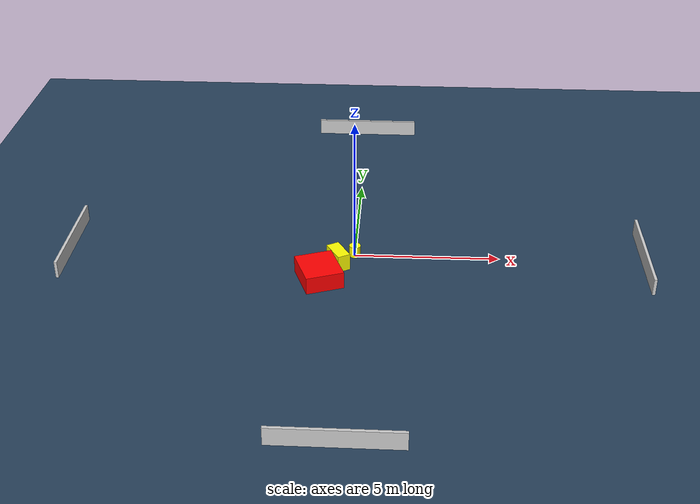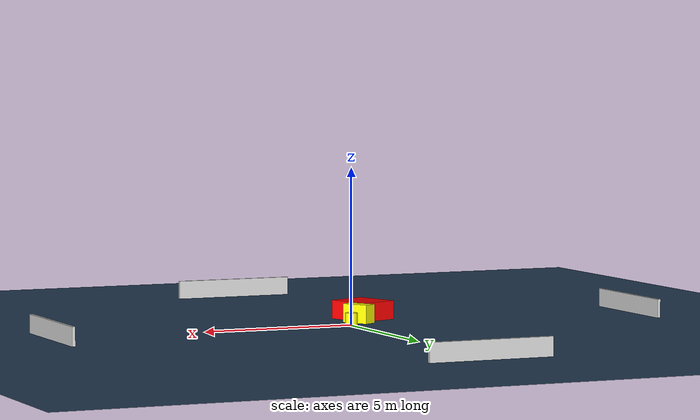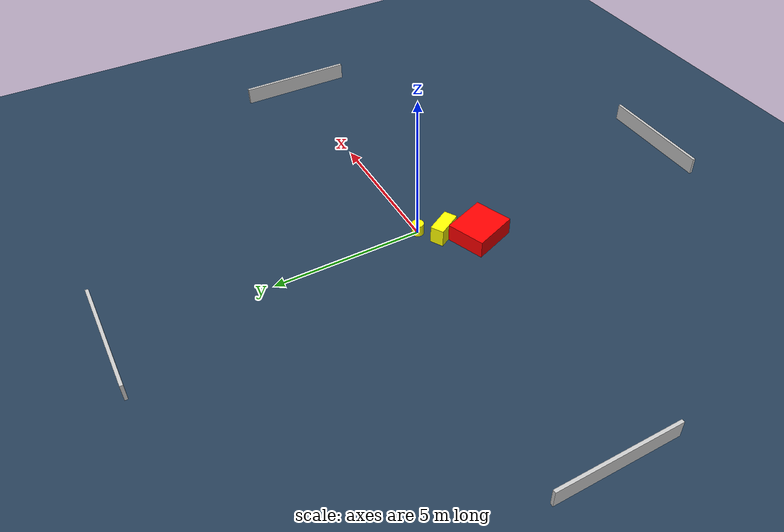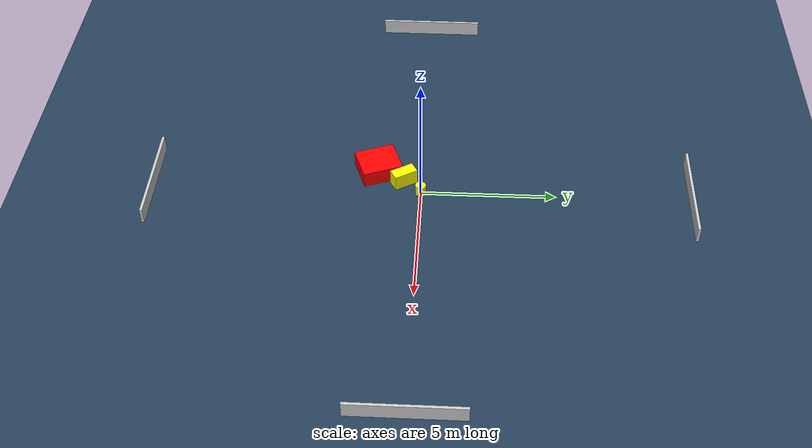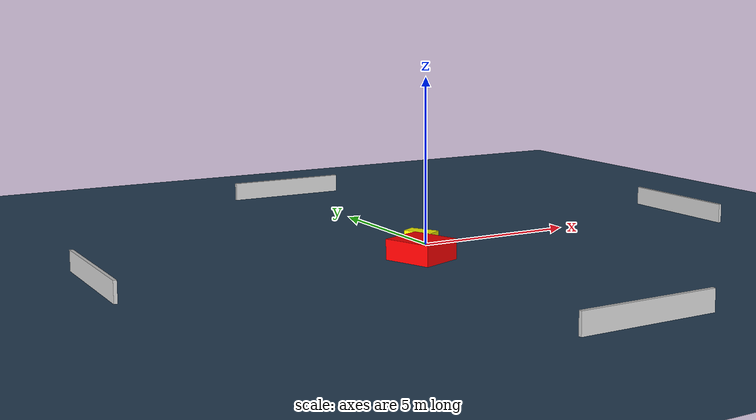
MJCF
<?xml version="1.0" ?>
<mujoco model="generated_environment">
  <option timestep="0.01" integrator="RK4" cone="elliptic"/>
  <default>
    <geom density="1"/>
  </default>
  <asset>
    <texture builtin="gradient" height="3072" name="skybox" rgb1="0.3 0.5 0.7" rgb2="0 0 0" type="skybox" width="512"/>
    <texture builtin="checker" height="300" name="groundplane" rgb1="0.2 0.3 0.4" rgb2="0.1 0.2 0.3" type="2d" width="300"/>
    <material name="groundplane" reflectance="0.2" texrepeat="5 5" texture="groundplane"/>
  </asset>
  <worldbody>
    <light dir="0 0 -1" directional="true" pos="0 0 1.5"/>
    <geom condim="3" friction="0.5 0.005 0.001" material="groundplane" name="floor" pos="0 0 0" size="0 0 0.05" type="plane"/>
    <body name="walls">
      <geom name="wall_1" condim="4" pos="-10.0 0.0 0.3" rgba="0.800000011920929 0.800000011920929 0.800000011920929 1.0" size="0.05 2.0 0.3" type="box"/>
      <geom name="wall_2" condim="4" pos="10.0 0.0 0.3" rgba="0.800000011920929 0.800000011920929 0.800000011920929 1.0" size="0.05 2.0 0.3" type="box"/>
      <geom name="wall_3" condim="4" pos="0.0 -10.0 0.3" rgba="0.800000011920929 0.800000011920929 0.800000011920929 1.0" size="2.0 0.05 0.3" type="box"/>
      <geom name="wall_4" condim="4" pos="0.0 10.0 0.3" rgba="0.800000011920929 0.800000011920929 0.800000011920929 1.0" size="2.0 0.05 0.3" type="box"/>
    </body>
    <body name="robot">
      <joint name="joint_x" type="slide" pos="0 0 0" axis="1 0 0"/>
      <joint name="joint_y" type="slide" pos="0 0 0" axis="0 1 0"/>
      <geom name="robot" type="cylinder" pos="0.0 0.0 0.2" size="0.2 0.2 0.0" mass="5.0" friction="1.0 0.005 0.0001" condim="4" rgba="1.0 1.0 0.0 1.0"/>
    </body>
    <body name="obstacle_1_movable">
      <geom name="obstacle_1_movable" condim="4" pos="-0.5413768655466848 -0.6524666242802697 0.3" euler="0 0 30.03436258959063" friction="0.0 0.005 0.001" rgba="1.0 1.0 0.0 1.0" size="0.22734866713168134 0.45557586667077565 0.3" type="box" mass="0.1"/>
      <joint type="free"/>
    </body>
    <body name="obstacle_2_static">
      <geom name="obstacle_2_static" condim="4" pos="-1.1284805116516474 -1.637408950174057 0.3" euler="0 0 20.669210333781148" friction="0.0 0.005 0.001" rgba="1.0 0.0 0.0 1.0" size="0.6543668397981901 0.7565012891929077 0.3" type="box"/>
    </body>
  </worldbody>
  <actuator>
    <motor name="actuator_x" joint="joint_x" gear="1" ctrlrange="-1 1"/>
    <motor name="actuator_y" joint="joint_y" gear="1" ctrlrange="-1 1"/>
  </actuator>
</mujoco>
